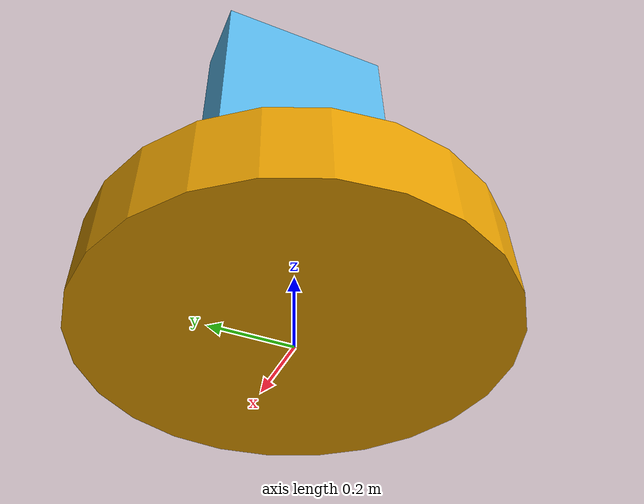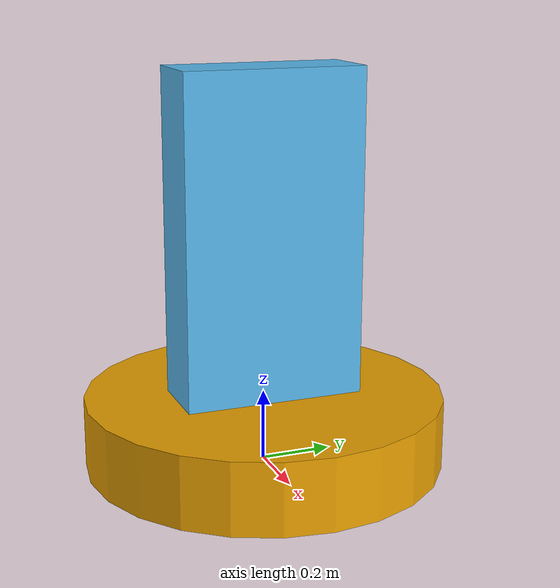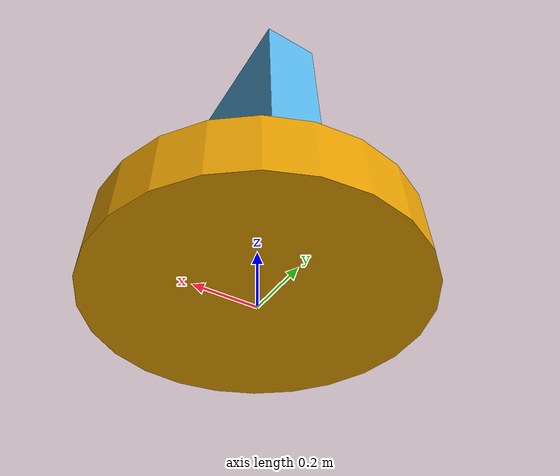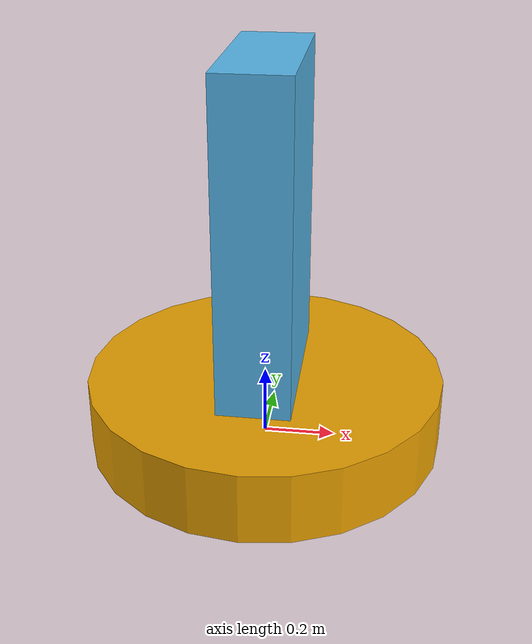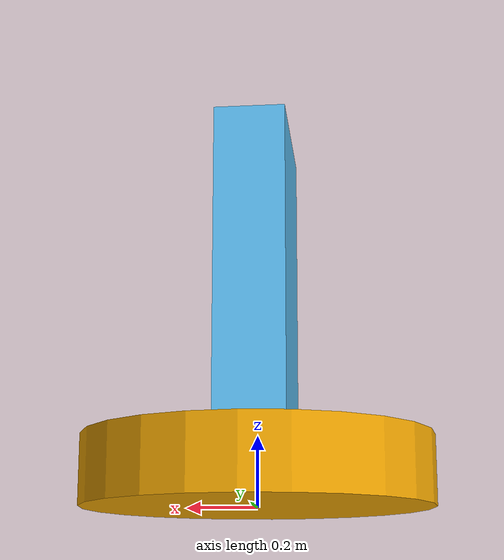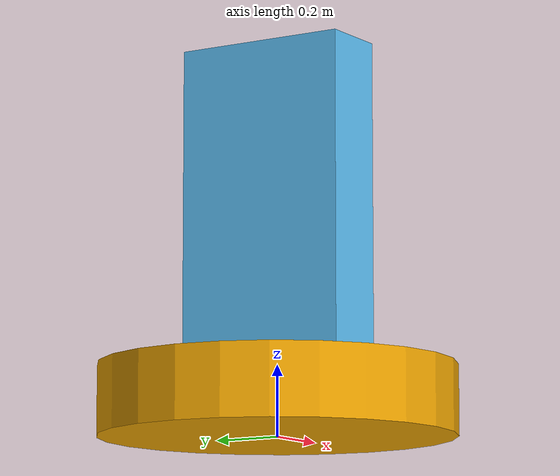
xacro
<?xml version="1.0" ?>

<!--           arm_tutorial.xacro            -->
<!-- This document describes the robot model -->
<!--       SubT Junior Tutorial Version      -->
<!--        Last editted: 29/05, 2019        -->
<!--            Editor: Wolf Chen            -->

<robot name="arm" xmlns:xacro="http://www.ros.org/wiki/xacro">

  <!-- BGN - Robot Description -->
  <link name="base_link">
    <visual>
      <origin rpy="0 0 0" xyz="0 0 0.1"/>
      <geometry>
        <cylinder radius="0.5" length="0.2"/>
      </geometry>
    </visual>
  </link>

  <joint name="base_joint" type="revolute">
    <axis xyz="0 1 0"/>
    <limit effort="1000.0" lower="-1.57" upper="1.57" velocity="0.2"/>
    <origin rpy="0 0 0" xyz="0 0 0.1"/>
    <parent link="base_link"/>
    <child link="shoulder_link"/>
  </joint>

  <link name="shoulder_link">
    <visual>
      <origin rpy="0 0 0" xyz="0 0 0.5"/>
      <geometry>
        <box size="0.2 0.5 1"/>
      </geometry>
    </visual>
  </link>
</robot>
